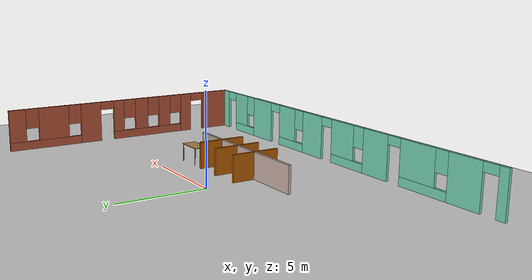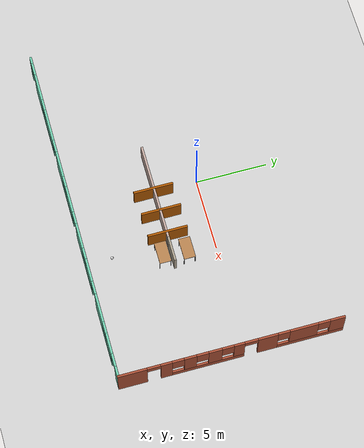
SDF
<sdf version="1.6">
 <world name="default">
  <model name="ground_plane">
   <static>1</static>
   <link name="link">
    <collision name="collision">
     <geometry><plane><normal>0 0 1</normal><size>100 100</size></plane></geometry>
     <surface>
      <contact><collide_bitmask>65535</collide_bitmask></contact>
      <friction><ode><mu>100</mu><mu2>50</mu2></ode></friction>
     </surface>
    </collision>
    <visual name="visual">
     <cast_shadows>0</cast_shadows>
     <geometry><plane><normal>0 0 1</normal><size>100 100</size></plane></geometry>
     <material>
      <script><uri>file://media/materials/scripts/gazebo.material</uri><name>Gazebo/Grey</name></script>
     </material>
    </visual>
   </link>
  </model>
  <model name="officespace">
   <pose>0.84701 -1.22405 0 0 -0 0</pose>
   <link name="Wall_53">
    <collision name="Wall_53_Collision">
     <geometry><box><size>7 0.15 1.5</size></box></geometry>
     <pose>0 0 0.75 0 -0 0</pose>
    </collision>
    <visual name="Wall_53_Visual">
     <pose>0 0 0.75 0 -0 0</pose>
     <geometry><box><size>7 0.15 1.5</size></box></geometry>
     <material>
      <script><uri>file://media/materials/scripts/gazebo.material</uri><name>Gazebo/Grey</name></script>
      <ambient>0.760784 0.662745 0.627451 1</ambient>
     </material>
     <meta><layer>0</layer></meta>
    </visual>
    <pose>-0.246524 -1.82856 0 0 -0 0</pose>
   </link>
   <link name="Wall_57">
    <collision name="Wall_57_Collision">
     <geometry><box><size>2.75 0.15 1.5</size></box></geometry>
     <pose>0 0 0.75 0 -0 0</pose>
    </collision>
    <visual name="Wall_57_Visual">
     <pose>0 0 0.75 0 -0 0</pose>
     <geometry><box><size>2.75 0.15 1.5</size></box></geometry>
     <material>
      <script><uri>file://media/materials/scripts/gazebo.material</uri><name>Gazebo/Grey</name></script>
      <ambient>0.666667 0.333333 0 1</ambient>
     </material>
     <meta><layer>0</layer></meta>
    </visual>
    <pose>-0.589525 -1.86356 0 0 0 -1.5708</pose>
   </link>
   <link name="Wall_60">
    <collision name="Wall_60_Collision">
     <geometry><box><size>2.75 0.15 1.5</size></box></geometry>
     <pose>0 0 0.75 0 -0 0</pose>
    </collision>
    <visual name="Wall_60_Visual">
     <pose>0 0 0.75 0 -0 0</pose>
     <geometry><box><size>2.75 0.15 1.5</size></box></geometry>
     <material>
      <script><uri>file://media/materials/scripts/gazebo.material</uri><name>Gazebo/Grey</name></script>
      <ambient>0.666667 0.333333 0 1</ambient>
     </material>
     <meta><layer>0</layer></meta>
    </visual>
    <pose>1.06648 -1.77156 0 0 0 -1.5708</pose>
   </link>
   <link name="Wall_62">
    <collision name="Wall_62_Collision">
     <geometry><box><size>1.75 0.15 1.5</size></box></geometry>
     <pose>0 0 0.75 0 -0 0</pose>
    </collision>
    <visual name="Wall_62_Visual">
     <pose>0 0 0.75 0 -0 0</pose>
     <geometry><box><size>1.75 0.15 1.5</size></box></geometry>
     <material>
      <script><uri>file://media/materials/scripts/gazebo.material</uri><name>Gazebo/Grey</name></script>
      <ambient>0.666667 0.623529 0.54902 1</ambient>
     </material>
     <meta><layer>0</layer></meta>
    </visual>
    <pose>3.97847 -1.82856 0 0 -0 0</pose>
   </link>
   <link name="Wall_64">
    <collision name="Wall_64_Collision">
     <geometry><box><size>2.75 0.15 1.5</size></box></geometry>
     <pose>0 0 0.75 0 -0 0</pose>
    </collision>
    <visual name="Wall_64_Visual">
     <pose>0 0 0.75 0 -0 0</pose>
     <geometry><box><size>2.75 0.15 1.5</size></box></geometry>
     <material>
      <script><uri>file://media/materials/scripts/gazebo.material</uri><name>Gazebo/Grey</name></script>
      <ambient>0.666667 0.333333 0 1</ambient>
     </material>
     <meta><layer>0</layer></meta>
    </visual>
    <pose>2.69948 -1.77156 0 0 0 -1.5708</pose>
   </link>
   <link name="Wall_8">
    <pose>0.019 -7.5555 0 0 -0 0</pose>
    <visual name="Wall_8_Visual_0">
     <pose>-11.739 0 1.25 0 -0 0</pose>
     <geometry><box><size>0.522 0.15 2.5</size></box></geometry>
     <material>
      <script><uri>file://media/materials/scripts/gazebo.material</uri><name>Gazebo/Grey</name></script>
      <ambient>0.435294 0.796078 0.67451 1</ambient>
     </material>
     <meta><layer>0</layer></meta>
    </visual>
    <collision name="Wall_8_Collision_0">
     <geometry><box><size>0.522 0.15 2.5</size></box></geometry>
     <pose>-11.739 0 1.25 0 -0 0</pose>
    </collision>
    <visual name="Wall_8_Visual_1">
     <pose>-9.577 0 1.25 0 -0 0</pose>
     <geometry><box><size>2.002 0.15 2.5</size></box></geometry>
     <material>
      <script><uri>file://media/materials/scripts/gazebo.material</uri><name>Gazebo/Grey</name></script>
      <ambient>0.435294 0.796078 0.67451 1</ambient>
     </material>
     <meta><layer>0</layer></meta>
    </visual>
    <collision name="Wall_8_Collision_1">
     <geometry><box><size>2.002 0.15 2.5</size></box></geometry>
     <pose>-9.577 0 1.25 0 -0 0</pose>
    </collision>
    <visual name="Wall_8_Visual_2">
     <pose>-3.5625 0 1.25 0 -0 0</pose>
     <geometry><box><size>1.887 0.15 2.5</size></box></geometry>
     <material>
      <script><uri>file://media/materials/scripts/gazebo.material</uri><name>Gazebo/Grey</name></script>
      <ambient>0.435294 0.796078 0.67451 1</ambient>
     </material>
     <meta><layer>0</layer></meta>
    </visual>
    <collision name="Wall_8_Collision_2">
     <geometry><box><size>1.887 0.15 2.5</size></box></geometry>
     <pose>-3.5625 0 1.25 0 -0 0</pose>
    </collision>
    <visual name="Wall_8_Visual_3">
     <pose>1.8655 0 1.25 0 -0 0</pose>
     <geometry><box><size>1.795 0.15 2.5</size></box></geometry>
     <material>
      <script><uri>file://media/materials/scripts/gazebo.material</uri><name>Gazebo/Grey</name></script>
      <ambient>0.435294 0.796078 0.67451 1</ambient>
     </material>
     <meta><layer>0</layer></meta>
    </visual>
    <collision name="Wall_8_Collision_3">
     <geometry><box><size>1.795 0.15 2.5</size></box></geometry>
     <pose>1.8655 0 1.25 0 -0 0</pose>
    </collision>
    <visual name="Wall_8_Visual_4">
     <pose>7.098 0 1.25 0 -0 0</pose>
     <geometry><box><size>2.002 0.15 2.5</size></box></geometry>
     <material>
      <script><uri>file://media/materials/scripts/gazebo.material</uri><name>Gazebo/Grey</name></script>
      <ambient>0.435294 0.796078 0.67451 1</ambient>
     </material>
     <meta><layer>0</layer></meta>
    </visual>
    <collision name="Wall_8_Collision_4">
     <geometry><box><size>2.002 0.15 2.5</size></box></geometry>
     <pose>7.098 0 1.25 0 -0 0</pose>
    </collision>
    <visual name="Wall_8_Visual_5">
     <pose>11.613 0 1.25 0 -0 0</pose>
     <geometry><box><size>0.774 0.15 2.5</size></box></geometry>
     <material>
      <script><uri>file://media/materials/scripts/gazebo.material</uri><name>Gazebo/Grey</name></script>
      <ambient>0.435294 0.796078 0.67451 1</ambient>
     </material>
     <meta><layer>0</layer></meta>
    </visual>
    <collision name="Wall_8_Collision_5">
     <geometry><box><size>0.774 0.15 2.5</size></box></geometry>
     <pose>11.613 0 1.25 0 -0 0</pose>
    </collision>
    <visual name="Wall_8_Visual_6">
     <pose>-6.991 0 0.25 0 -0 0</pose>
     <geometry><box><size>3.17 0.15 0.5</size></box></geometry>
     <material>
      <script><uri>file://media/materials/scripts/gazebo.material</uri><name>Gazebo/Grey</name></script>
      <ambient>0.435294 0.796078 0.67451 1</ambient>
     </material>
     <meta><layer>0</layer></meta>
    </visual>
    <collision name="Wall_8_Collision_6">
     <geometry><box><size>3.17 0.15 0.5</size></box></geometry>
     <pose>-6.991 0 0.25 0 -0 0</pose>
    </collision>
    <visual name="Wall_8_Visual_7">
     <pose>-1.2755 0 0.25 0 -0 0</pose>
     <geometry><box><size>2.687 0.15 0.5</size></box></geometry>
     <material>
      <script><uri>file://media/materials/scripts/gazebo.material</uri><name>Gazebo/Grey</name></script>
      <ambient>0.435294 0.796078 0.67451 1</ambient>
     </material>
     <meta><layer>0</layer></meta>
    </visual>
    <collision name="Wall_8_Collision_7">
     <geometry><box><size>2.687 0.15 0.5</size></box></geometry>
     <pose>-1.2755 0 0.25 0 -0 0</pose>
    </collision>
    <visual name="Wall_8_Visual_8">
     <pose>3.98 0 0.25 0 -0 0</pose>
     <geometry><box><size>2.434 0.15 0.5</size></box></geometry>
     <material>
      <script><uri>file://media/materials/scripts/gazebo.material</uri><name>Gazebo/Grey</name></script>
      <ambient>0.435294 0.796078 0.67451 1</ambient>
     </material>
     <meta><layer>0</layer></meta>
    </visual>
    <collision name="Wall_8_Collision_8">
     <geometry><box><size>2.434 0.15 0.5</size></box></geometry>
     <pose>3.98 0 0.25 0 -0 0</pose>
    </collision>
    <visual name="Wall_8_Visual_9">
     <pose>9.2125 0 0.25 0 -0 0</pose>
     <geometry><box><size>2.227 0.15 0.5</size></box></geometry>
     <material>
      <script><uri>file://media/materials/scripts/gazebo.material</uri><name>Gazebo/Grey</name></script>
      <ambient>0.435294 0.796078 0.67451 1</ambient>
     </material>
     <meta><layer>0</layer></meta>
    </visual>
    <collision name="Wall_8_Collision_9">
     <geometry><box><size>2.227 0.15 0.5</size></box></geometry>
     <pose>9.2125 0 0.25 0 -0 0</pose>
    </collision>
    <visual name="Wall_8_Visual_10">
     <pose>-6.591 0 1.5 0 -0 0</pose>
     <geometry><box><size>2.37 0.15 2</size></box></geometry>
     <material>
      <script><uri>file://media/materials/scripts/gazebo.material</uri><name>Gazebo/Grey</name></script>
      <ambient>0.435294 0.796078 0.67451 1</ambient>
     </material>
     <meta><layer>0</layer></meta>
    </visual>
    <collision name="Wall_8_Collision_10">
     <geometry><box><size>2.37 0.15 2</size></box></geometry>
     <pose>-6.591 0 1.5 0 -0 0</pose>
    </collision>
    <visual name="Wall_8_Visual_11">
     <pose>-6.591 0 1.5 0 -0 0</pose>
     <geometry><box><size>2.37 0.15 2</size></box></geometry>
     <material>
      <script><uri>file://media/materials/scripts/gazebo.material</uri><name>Gazebo/Grey</name></script>
      <ambient>0.435294 0.796078 0.67451 1</ambient>
     </material>
     <meta><layer>0</layer></meta>
    </visual>
    <collision name="Wall_8_Collision_11">
     <geometry><box><size>2.37 0.15 2</size></box></geometry>
     <pose>-6.591 0 1.5 0 -0 0</pose>
    </collision>
    <visual name="Wall_8_Visual_12">
     <pose>-0.8755 0 1.5 0 -0 0</pose>
     <geometry><box><size>1.887 0.15 2</size></box></geometry>
     <material>
      <script><uri>file://media/materials/scripts/gazebo.material</uri><name>Gazebo/Grey</name></script>
      <ambient>0.435294 0.796078 0.67451 1</ambient>
     </material>
     <meta><layer>0</layer></meta>
    </visual>
    <collision name="Wall_8_Collision_12">
     <geometry><box><size>1.887 0.15 2</size></box></geometry>
     <pose>-0.8755 0 1.5 0 -0 0</pose>
    </collision>
    <visual name="Wall_8_Visual_13">
     <pose>-0.8755 0 1.5 0 -0 0</pose>
     <geometry><box><size>1.887 0.15 2</size></box></geometry>
     <material>
      <script><uri>file://media/materials/scripts/gazebo.material</uri><name>Gazebo/Grey</name></script>
      <ambient>0.435294 0.796078 0.67451 1</ambient>
     </material>
     <meta><layer>0</layer></meta>
    </visual>
    <collision name="Wall_8_Collision_13">
     <geometry><box><size>1.887 0.15 2</size></box></geometry>
     <pose>-0.8755 0 1.5 0 -0 0</pose>
    </collision>
    <visual name="Wall_8_Visual_14">
     <pose>4.38 0 1.5 0 -0 0</pose>
     <geometry><box><size>1.634 0.15 2</size></box></geometry>
     <material>
      <script><uri>file://media/materials/scripts/gazebo.material</uri><name>Gazebo/Grey</name></script>
      <ambient>0.435294 0.796078 0.67451 1</ambient>
     </material>
     <meta><layer>0</layer></meta>
    </visual>
    <collision name="Wall_8_Collision_14">
     <geometry><box><size>1.634 0.15 2</size></box></geometry>
     <pose>4.38 0 1.5 0 -0 0</pose>
    </collision>
    <visual name="Wall_8_Visual_15">
     <pose>4.38 0 1.5 0 -0 0</pose>
     <geometry><box><size>1.634 0.15 2</size></box></geometry>
     <material>
      <script><uri>file://media/materials/scripts/gazebo.material</uri><name>Gazebo/Grey</name></script>
      <ambient>0.435294 0.796078 0.67451 1</ambient>
     </material>
     <meta><layer>0</layer></meta>
    </visual>
    <collision name="Wall_8_Collision_15">
     <geometry><box><size>1.634 0.15 2</size></box></geometry>
     <pose>4.38 0 1.5 0 -0 0</pose>
    </collision>
    <visual name="Wall_8_Visual_16">
     <pose>9.6125 0 1.5 0 -0 0</pose>
     <geometry><box><size>1.427 0.15 2</size></box></geometry>
     <material>
      <script><uri>file://media/materials/scripts/gazebo.material</uri><name>Gazebo/Grey</name></script>
      <ambient>0.435294 0.796078 0.67451 1</ambient>
     </material>
     <meta><layer>0</layer></meta>
    </visual>
    <collision name="Wall_8_Collision_16">
     <geometry><box><size>1.427 0.15 2</size></box></geometry>
     <pose>9.6125 0 1.5 0 -0 0</pose>
    </collision>
    <visual name="Wall_8_Visual_17">
     <pose>-8.176 0 1.9 0 -0 0</pose>
     <geometry><box><size>0.8 0.15 1.2</size></box></geometry>
     <material>
      <script><uri>file://media/materials/scripts/gazebo.material</uri><name>Gazebo/Grey</name></script>
      <ambient>0.435294 0.796078 0.67451 1</ambient>
     </material>
     <meta><layer>0</layer></meta>
    </visual>
    <collision name="Wall_8_Collision_17">
     <geometry><box><size>0.8 0.15 1.2</size></box></geometry>
     <pose>-8.176 0 1.9 0 -0 0</pose>
    </collision>
    <visual name="Wall_8_Visual_18">
     <pose>-2.219 0 1.9 0 -0 0</pose>
     <geometry><box><size>0.8 0.15 1.2</size></box></geometry>
     <material>
      <script><uri>file://media/materials/scripts/gazebo.material</uri><name>Gazebo/Grey</name></script>
      <ambient>0.435294 0.796078 0.67451 1</ambient>
     </material>
     <meta><layer>0</layer></meta>
    </visual>
    <collision name="Wall_8_Collision_18">
     <geometry><box><size>0.8 0.15 1.2</size></box></geometry>
     <pose>-2.219 0 1.9 0 -0 0</pose>
    </collision>
    <visual name="Wall_8_Visual_19">
     <pose>3.163 0 1.9 0 -0 0</pose>
     <geometry><box><size>0.8 0.15 1.2</size></box></geometry>
     <material>
      <script><uri>file://media/materials/scripts/gazebo.material</uri><name>Gazebo/Grey</name></script>
      <ambient>0.435294 0.796078 0.67451 1</ambient>
     </material>
     <meta><layer>0</layer></meta>
    </visual>
    <collision name="Wall_8_Collision_19">
     <geometry><box><size>0.8 0.15 1.2</size></box></geometry>
     <pose>3.163 0 1.9 0 -0 0</pose>
    </collision>
    <visual name="Wall_8_Visual_20">
     <pose>8.499 0 1.9 0 -0 0</pose>
     <geometry><box><size>0.8 0.15 1.2</size></box></geometry>
     <material>
      <script><uri>file://media/materials/scripts/gazebo.material</uri><name>Gazebo/Grey</name></script>
      <ambient>0.435294 0.796078 0.67451 1</ambient>
     </material>
     <meta><layer>0</layer></meta>
    </visual>
    <collision name="Wall_8_Collision_20">
     <geometry><box><size>0.8 0.15 1.2</size></box></geometry>
     <pose>8.499 0 1.9 0 -0 0</pose>
    </collision>
    <visual name="Wall_8_Visual_21">
     <pose>-11.028 0 2.25 0 -0 0</pose>
     <geometry><box><size>0.9 0.15 0.5</size></box></geometry>
     <material>
      <script><uri>file://media/materials/scripts/gazebo.material</uri><name>Gazebo/Grey</name></script>
      <ambient>0.435294 0.796078 0.67451 1</ambient>
     </material>
     <meta><layer>0</layer></meta>
    </visual>
    <collision name="Wall_8_Collision_21">
     <geometry><box><size>0.9 0.15 0.5</size></box></geometry>
     <pose>-11.028 0 2.25 0 -0 0</pose>
    </collision>
    <visual name="Wall_8_Visual_22">
     <pose>-4.956 0 2.25 0 -0 0</pose>
     <geometry><box><size>0.9 0.15 0.5</size></box></geometry>
     <material>
      <script><uri>file://media/materials/scripts/gazebo.material</uri><name>Gazebo/Grey</name></script>
      <ambient>0.435294 0.796078 0.67451 1</ambient>
     </material>
     <meta><layer>0</layer></meta>
    </visual>
    <collision name="Wall_8_Collision_22">
     <geometry><box><size>0.9 0.15 0.5</size></box></geometry>
     <pose>-4.956 0 2.25 0 -0 0</pose>
    </collision>
    <visual name="Wall_8_Visual_23">
     <pose>-4.956 0 2.25 0 -0 0</pose>
     <geometry><box><size>0.9 0.15 0.5</size></box></geometry>
     <material>
      <script><uri>file://media/materials/scripts/gazebo.material</uri><name>Gazebo/Grey</name></script>
      <ambient>0.435294 0.796078 0.67451 1</ambient>
     </material>
     <meta><layer>0</layer></meta>
    </visual>
    <collision name="Wall_8_Collision_23">
     <geometry><box><size>0.9 0.15 0.5</size></box></geometry>
     <pose>-4.956 0 2.25 0 -0 0</pose>
    </collision>
    <visual name="Wall_8_Visual_24">
     <pose>0.518 0 2.25 0 -0 0</pose>
     <geometry><box><size>0.9 0.15 0.5</size></box></geometry>
     <material>
      <script><uri>file://media/materials/scripts/gazebo.material</uri><name>Gazebo/Grey</name></script>
      <ambient>0.435294 0.796078 0.67451 1</ambient>
     </material>
     <meta><layer>0</layer></meta>
    </visual>
    <collision name="Wall_8_Collision_24">
     <geometry><box><size>0.9 0.15 0.5</size></box></geometry>
     <pose>0.518 0 2.25 0 -0 0</pose>
    </collision>
    <visual name="Wall_8_Visual_25">
     <pose>0.518 0 2.25 0 -0 0</pose>
     <geometry><box><size>0.9 0.15 0.5</size></box></geometry>
     <material>
      <script><uri>file://media/materials/scripts/gazebo.material</uri><name>Gazebo/Grey</name></script>
      <ambient>0.435294 0.796078 0.67451 1</ambient>
     </material>
     <meta><layer>0</layer></meta>
    </visual>
    <collision name="Wall_8_Collision_25">
     <geometry><box><size>0.9 0.15 0.5</size></box></geometry>
     <pose>0.518 0 2.25 0 -0 0</pose>
    </collision>
    <visual name="Wall_8_Visual_26">
     <pose>5.647 0 2.25 0 -0 0</pose>
     <geometry><box><size>0.9 0.15 0.5</size></box></geometry>
     <material>
      <script><uri>file://media/materials/scripts/gazebo.material</uri><name>Gazebo/Grey</name></script>
      <ambient>0.435294 0.796078 0.67451 1</ambient>
     </material>
     <meta><layer>0</layer></meta>
    </visual>
    <collision name="Wall_8_Collision_26">
     <geometry><box><size>0.9 0.15 0.5</size></box></geometry>
     <pose>5.647 0 2.25 0 -0 0</pose>
    </collision>
    <visual name="Wall_8_Visual_27">
     <pose>5.647 0 2.25 0 -0 0</pose>
     <geometry><box><size>0.9 0.15 0.5</size></box></geometry>
     <material>
      <script><uri>file://media/materials/scripts/gazebo.material</uri><name>Gazebo/Grey</name></script>
      <ambient>0.435294 0.796078 0.67451 1</ambient>
     </material>
     <meta><layer>0</layer></meta>
    </visual>
    <collision name="Wall_8_Collision_27">
     <geometry><box><size>0.9 0.15 0.5</size></box></geometry>
     <pose>5.647 0 2.25 0 -0 0</pose>
    </collision>
    <visual name="Wall_8_Visual_28">
     <pose>10.776 0 2.25 0 -0 0</pose>
     <geometry><box><size>0.9 0.15 0.5</size></box></geometry>
     <material>
      <script><uri>file://media/materials/scripts/gazebo.material</uri><name>Gazebo/Grey</name></script>
      <ambient>0.435294 0.796078 0.67451 1</ambient>
     </material>
     <meta><layer>0</layer></meta>
    </visual>
    <collision name="Wall_8_Collision_28">
     <geometry><box><size>0.9 0.15 0.5</size></box></geometry>
     <pose>10.776 0 2.25 0 -0 0</pose>
    </collision>
   </link>
   <link name="Wall_9">
    <pose>11.944 -0.005499 0 0 -0 1.5708</pose>
    <visual name="Wall_9_Visual_0">
     <pose>-6.6395 0 1.25 0 -0 0</pose>
     <geometry><box><size>1.971 0.15 2.5</size></box></geometry>
     <material>
      <script><uri>file://media/materials/scripts/gazebo.material</uri><name>Gazebo/Bricks</name></script>
      <ambient>0.435294 0.796078 0.67451 1</ambient>
     </material>
     <meta><layer>0</layer></meta>
    </visual>
    <collision name="Wall_9_Collision_0">
     <geometry><box><size>1.971 0.15 2.5</size></box></geometry>
     <pose>-6.6395 0 1.25 0 -0 0</pose>
    </collision>
    <visual name="Wall_9_Visual_1">
     <pose>-4.374 0 1.25 0 -0 0</pose>
     <geometry><box><size>0.76 0.15 2.5</size></box></geometry>
     <material>
      <script><uri>file://media/materials/scripts/gazebo.material</uri><name>Gazebo/Bricks</name></script>
      <ambient>0.435294 0.796078 0.67451 1</ambient>
     </material>
     <meta><layer>0</layer></meta>
    </visual>
    <collision name="Wall_9_Collision_1">
     <geometry><box><size>0.76 0.15 2.5</size></box></geometry>
     <pose>-4.374 0 1.25 0 -0 0</pose>
    </collision>
    <visual name="Wall_9_Visual_2">
     <pose>2.4225 0 1.25 0 -0 0</pose>
     <geometry><box><size>1.335 0.15 2.5</size></box></geometry>
     <material>
      <script><uri>file://media/materials/scripts/gazebo.material</uri><name>Gazebo/Bricks</name></script>
      <ambient>0.435294 0.796078 0.67451 1</ambient>
     </material>
     <meta><layer>0</layer></meta>
    </visual>
    <collision name="Wall_9_Collision_2">
     <geometry><box><size>1.335 0.15 2.5</size></box></geometry>
     <pose>2.4225 0 1.25 0 -0 0</pose>
    </collision>
    <visual name="Wall_9_Visual_3">
     <pose>-1.5695 0 0.25 0 -0 0</pose>
     <geometry><box><size>4.849 0.15 0.5</size></box></geometry>
     <material>
      <script><uri>file://media/materials/scripts/gazebo.material</uri><name>Gazebo/Bricks</name></script>
      <ambient>0.435294 0.796078 0.67451 1</ambient>
     </material>
     <meta><layer>0</layer></meta>
    </visual>
    <collision name="Wall_9_Collision_3">
     <geometry><box><size>4.849 0.15 0.5</size></box></geometry>
     <pose>-1.5695 0 0.25 0 -0 0</pose>
    </collision>
    <visual name="Wall_9_Visual_4">
     <pose>5.3575 0 0.25 0 -0 0</pose>
     <geometry><box><size>4.535 0.15 0.5</size></box></geometry>
     <material>
      <script><uri>file://media/materials/scripts/gazebo.material</uri><name>Gazebo/Bricks</name></script>
      <ambient>0.435294 0.796078 0.67451 1</ambient>
     </material>
     <meta><layer>0</layer></meta>
    </visual>
    <collision name="Wall_9_Collision_4">
     <geometry><box><size>4.535 0.15 0.5</size></box></geometry>
     <pose>5.3575 0 0.25 0 -0 0</pose>
    </collision>
    <visual name="Wall_9_Visual_5">
     <pose>-2.7775 0 1.5 0 -0 0</pose>
     <geometry><box><size>0.833 0.15 2</size></box></geometry>
     <material>
      <script><uri>file://media/materials/scripts/gazebo.material</uri><name>Gazebo/Bricks</name></script>
      <ambient>0.435294 0.796078 0.67451 1</ambient>
     </material>
     <meta><layer>0</layer></meta>
    </visual>
    <collision name="Wall_9_Collision_5">
     <geometry><box><size>0.833 0.15 2</size></box></geometry>
     <pose>-2.7775 0 1.5 0 -0 0</pose>
    </collision>
    <visual name="Wall_9_Visual_6">
     <pose>-1.11 0 1.5 0 -0 0</pose>
     <geometry><box><size>0.902 0.15 2</size></box></geometry>
     <material>
      <script><uri>file://media/materials/scripts/gazebo.material</uri><name>Gazebo/Bricks</name></script>
      <ambient>0.435294 0.796078 0.67451 1</ambient>
     </material>
     <meta><layer>0</layer></meta>
    </visual>
    <collision name="Wall_9_Collision_6">
     <geometry><box><size>0.902 0.15 2</size></box></geometry>
     <pose>-1.11 0 1.5 0 -0 0</pose>
    </collision>
    <visual name="Wall_9_Visual_7">
     <pose>0.498 0 1.5 0 -0 0</pose>
     <geometry><box><size>0.714 0.15 2</size></box></geometry>
     <material>
      <script><uri>file://media/materials/scripts/gazebo.material</uri><name>Gazebo/Bricks</name></script>
      <ambient>0.435294 0.796078 0.67451 1</ambient>
     </material>
     <meta><layer>0</layer></meta>
    </visual>
    <collision name="Wall_9_Collision_7">
     <geometry><box><size>0.714 0.15 2</size></box></geometry>
     <pose>0.498 0 1.5 0 -0 0</pose>
    </collision>
    <visual name="Wall_9_Visual_8">
     <pose>0.498 0 1.5 0 -0 0</pose>
     <geometry><box><size>0.714 0.15 2</size></box></geometry>
     <material>
      <script><uri>file://media/materials/scripts/gazebo.material</uri><name>Gazebo/Bricks</name></script>
      <ambient>0.435294 0.796078 0.67451 1</ambient>
     </material>
     <meta><layer>0</layer></meta>
    </visual>
    <collision name="Wall_9_Collision_8">
     <geometry><box><size>0.714 0.15 2</size></box></geometry>
     <pose>0.498 0 1.5 0 -0 0</pose>
    </collision>
    <visual name="Wall_9_Visual_9">
     <pose>4.847 0 1.5 0 -0 0</pose>
     <geometry><box><size>1.914 0.15 2</size></box></geometry>
     <material>
      <script><uri>file://media/materials/scripts/gazebo.material</uri><name>Gazebo/Bricks</name></script>
      <ambient>0.435294 0.796078 0.67451 1</ambient>
     </material>
     <meta><layer>0</layer></meta>
    </visual>
    <collision name="Wall_9_Collision_9">
     <geometry><box><size>1.914 0.15 2</size></box></geometry>
     <pose>4.847 0 1.5 0 -0 0</pose>
    </collision>
    <visual name="Wall_9_Visual_10">
     <pose>7.1145 0 1.5 0 -0 0</pose>
     <geometry><box><size>1.021 0.15 2</size></box></geometry>
     <material>
      <script><uri>file://media/materials/scripts/gazebo.material</uri><name>Gazebo/Bricks</name></script>
      <ambient>0.435294 0.796078 0.67451 1</ambient>
     </material>
     <meta><layer>0</layer></meta>
    </visual>
    <collision name="Wall_9_Collision_10">
     <geometry><box><size>1.021 0.15 2</size></box></geometry>
     <pose>7.1145 0 1.5 0 -0 0</pose>
    </collision>
    <visual name="Wall_9_Visual_11">
     <pose>-3.594 0 1.9 0 -0 0</pose>
     <geometry><box><size>0.8 0.15 1.2</size></box></geometry>
     <material>
      <script><uri>file://media/materials/scripts/gazebo.material</uri><name>Gazebo/Bricks</name></script>
      <ambient>0.435294 0.796078 0.67451 1</ambient>
     </material>
     <meta><layer>0</layer></meta>
    </visual>
    <collision name="Wall_9_Collision_11">
     <geometry><box><size>0.8 0.15 1.2</size></box></geometry>
     <pose>-3.594 0 1.9 0 -0 0</pose>
    </collision>
    <visual name="Wall_9_Visual_12">
     <pose>3.49 0 1.9 0 -0 0</pose>
     <geometry><box><size>0.8 0.15 1.2</size></box></geometry>
     <material>
      <script><uri>file://media/materials/scripts/gazebo.material</uri><name>Gazebo/Bricks</name></script>
      <ambient>0.435294 0.796078 0.67451 1</ambient>
     </material>
     <meta><layer>0</layer></meta>
    </visual>
    <collision name="Wall_9_Collision_12">
     <geometry><box><size>0.8 0.15 1.2</size></box></geometry>
     <pose>3.49 0 1.9 0 -0 0</pose>
    </collision>
    <visual name="Wall_9_Visual_13">
     <pose>-1.961 0 1.9 0 -0 0</pose>
     <geometry><box><size>0.8 0.15 1.2</size></box></geometry>
     <material>
      <script><uri>file://media/materials/scripts/gazebo.material</uri><name>Gazebo/Bricks</name></script>
      <ambient>0.435294 0.796078 0.67451 1</ambient>
     </material>
     <meta><layer>0</layer></meta>
    </visual>
    <collision name="Wall_9_Collision_13">
     <geometry><box><size>0.8 0.15 1.2</size></box></geometry>
     <pose>-1.961 0 1.9 0 -0 0</pose>
    </collision>
    <visual name="Wall_9_Visual_14">
     <pose>-0.259 0 1.9 0 -0 0</pose>
     <geometry><box><size>0.8 0.15 1.2</size></box></geometry>
     <material>
      <script><uri>file://media/materials/scripts/gazebo.material</uri><name>Gazebo/Bricks</name></script>
      <ambient>0.435294 0.796078 0.67451 1</ambient>
     </material>
     <meta><layer>0</layer></meta>
    </visual>
    <collision name="Wall_9_Collision_14">
     <geometry><box><size>0.8 0.15 1.2</size></box></geometry>
     <pose>-0.259 0 1.9 0 -0 0</pose>
    </collision>
    <visual name="Wall_9_Visual_15">
     <pose>6.204 0 1.9 0 -0 0</pose>
     <geometry><box><size>0.8 0.15 1.2</size></box></geometry>
     <material>
      <script><uri>file://media/materials/scripts/gazebo.material</uri><name>Gazebo/Bricks</name></script>
      <ambient>0.435294 0.796078 0.67451 1</ambient>
     </material>
     <meta><layer>0</layer></meta>
    </visual>
    <collision name="Wall_9_Collision_15">
     <geometry><box><size>0.8 0.15 1.2</size></box></geometry>
     <pose>6.204 0 1.9 0 -0 0</pose>
    </collision>
    <visual name="Wall_9_Visual_16">
     <pose>-5.204 0 2.25 0 -0 0</pose>
     <geometry><box><size>0.9 0.15 0.5</size></box></geometry>
     <material>
      <script><uri>file://media/materials/scripts/gazebo.material</uri><name>Gazebo/Bricks</name></script>
      <ambient>0.435294 0.796078 0.67451 1</ambient>
     </material>
     <meta><layer>0</layer></meta>
    </visual>
    <collision name="Wall_9_Collision_16">
     <geometry><box><size>0.9 0.15 0.5</size></box></geometry>
     <pose>-5.204 0 2.25 0 -0 0</pose>
    </collision>
    <visual name="Wall_9_Visual_17">
     <pose>1.305 0 2.25 0 -0 0</pose>
     <geometry><box><size>0.9 0.15 0.5</size></box></geometry>
     <material>
      <script><uri>file://media/materials/scripts/gazebo.material</uri><name>Gazebo/Bricks</name></script>
      <ambient>0.435294 0.796078 0.67451 1</ambient>
     </material>
     <meta><layer>0</layer></meta>
    </visual>
    <collision name="Wall_9_Collision_17">
     <geometry><box><size>0.9 0.15 0.5</size></box></geometry>
     <pose>1.305 0 2.25 0 -0 0</pose>
    </collision>
    <visual name="Wall_9_Visual_18">
     <pose>1.305 0 2.25 0 -0 0</pose>
     <geometry><box><size>0.9 0.15 0.5</size></box></geometry>
     <material>
      <script><uri>file://media/materials/scripts/gazebo.material</uri><name>Gazebo/Bricks</name></script>
      <ambient>0.435294 0.796078 0.67451 1</ambient>
     </material>
     <meta><layer>0</layer></meta>
    </visual>
    <collision name="Wall_9_Collision_18">
     <geometry><box><size>0.9 0.15 0.5</size></box></geometry>
     <pose>1.305 0 2.25 0 -0 0</pose>
    </collision>
   </link>
   <static>1</static>
  </model>
  <model name="table">
   <static>1</static>
   <link name="link">
    <collision name="surface">
     <pose>0 0 1 0 -0 0</pose>
     <geometry><box><size>1.5 0.8 0.03</size></box></geometry>
     <surface><friction><ode><mu>0.6</mu><mu2>0.6</mu2></ode></friction></surface>
    </collision>
    <visual name="visual1">
     <pose>0 0 1 0 -0 0</pose>
     <geometry><box><size>1.5 0.8 0.03</size></box></geometry>
     <material>
      <script><uri>file://media/materials/scripts/gazebo.material</uri><name>Gazebo/Wood</name></script>
     </material>
    </visual>
    <collision name="front_left_leg">
     <pose>0.68 0.38 0.5 0 -0 0</pose>
     <geometry><cylinder><radius>0.02</radius><length>1</length></cylinder></geometry>
    </collision>
    <visual name="front_left_leg">
     <pose>0.68 0.38 0.5 0 -0 0</pose>
     <geometry><cylinder><radius>0.02</radius><length>1</length></cylinder></geometry>
     <material>
      <script><uri>file://media/materials/scripts/gazebo.material</uri><name>Gazebo/Grey</name></script>
     </material>
    </visual>
    <collision name="front_right_leg">
     <pose>0.68 -0.38 0.5 0 -0 0</pose>
     <geometry><cylinder><radius>0.02</radius><length>1</length></cylinder></geometry>
    </collision>
    <visual name="front_right_leg">
     <pose>0.68 -0.38 0.5 0 -0 0</pose>
     <geometry><cylinder><radius>0.02</radius><length>1</length></cylinder></geometry>
     <material>
      <script><uri>file://media/materials/scripts/gazebo.material</uri><name>Gazebo/Grey</name></script>
     </material>
    </visual>
    <collision name="back_right_leg">
     <pose>-0.68 -0.38 0.5 0 -0 0</pose>
     <geometry><cylinder><radius>0.02</radius><length>1</length></cylinder></geometry>
    </collision>
    <visual name="back_right_leg">
     <pose>-0.68 -0.38 0.5 0 -0 0</pose>
     <geometry><cylinder><radius>0.02</radius><length>1</length></cylinder></geometry>
     <material>
      <script><uri>file://media/materials/scripts/gazebo.material</uri><name>Gazebo/Grey</name></script>
     </material>
    </visual>
    <collision name="back_left_leg">
     <pose>-0.68 0.38 0.5 0 -0 0</pose>
     <geometry><cylinder><radius>0.02</radius><length>1</length></cylinder></geometry>
    </collision>
    <visual name="back_left_leg">
     <pose>-0.68 0.38 0.5 0 -0 0</pose>
     <geometry><cylinder><radius>0.02</radius><length>1</length></cylinder></geometry>
     <material>
      <script><uri>file://media/materials/scripts/gazebo.material</uri><name>Gazebo/Grey</name></script>
     </material>
    </visual>
   </link>
   <pose>4.74434 -3.6606 0 0 -0 0</pose>
  </model>
  <model name="table_clone">
   <static>1</static>
   <link name="link">
    <collision name="surface">
     <pose>0 0 1 0 -0 0</pose>
     <geometry><box><size>1.5 0.8 0.03</size></box></geometry>
     <surface><friction><ode><mu>0.6</mu><mu2>0.6</mu2></ode></friction></surface>
    </collision>
    <visual name="visual1">
     <pose>0 0 1 0 -0 0</pose>
     <geometry><box><size>1.5 0.8 0.03</size></box></geometry>
     <material>
      <script><uri>file://media/materials/scripts/gazebo.material</uri><name>Gazebo/Wood</name></script>
     </material>
    </visual>
    <collision name="front_left_leg">
     <pose>0.68 0.38 0.5 0 -0 0</pose>
     <geometry><cylinder><radius>0.02</radius><length>1</length></cylinder></geometry>
    </collision>
    <visual name="front_left_leg">
     <pose>0.68 0.38 0.5 0 -0 0</pose>
     <geometry><cylinder><radius>0.02</radius><length>1</length></cylinder></geometry>
     <material>
      <script><uri>file://media/materials/scripts/gazebo.material</uri><name>Gazebo/Grey</name></script>
     </material>
    </visual>
    <collision name="front_right_leg">
     <pose>0.68 -0.38 0.5 0 -0 0</pose>
     <geometry><cylinder><radius>0.02</radius><length>1</length></cylinder></geometry>
    </collision>
    <visual name="front_right_leg">
     <pose>0.68 -0.38 0.5 0 -0 0</pose>
     <geometry><cylinder><radius>0.02</radius><length>1</length></cylinder></geometry>
     <material>
      <script><uri>file://media/materials/scripts/gazebo.material</uri><name>Gazebo/Grey</name></script>
     </material>
    </visual>
    <collision name="back_right_leg">
     <pose>-0.68 -0.38 0.5 0 -0 0</pose>
     <geometry><cylinder><radius>0.02</radius><length>1</length></cylinder></geometry>
    </collision>
    <visual name="back_right_leg">
     <pose>-0.68 -0.38 0.5 0 -0 0</pose>
     <geometry><cylinder><radius>0.02</radius><length>1</length></cylinder></geometry>
     <material>
      <script><uri>file://media/materials/scripts/gazebo.material</uri><name>Gazebo/Grey</name></script>
     </material>
    </visual>
    <collision name="back_left_leg">
     <pose>-0.68 0.38 0.5 0 -0 0</pose>
     <geometry><cylinder><radius>0.02</radius><length>1</length></cylinder></geometry>
    </collision>
    <visual name="back_left_leg">
     <pose>-0.68 0.38 0.5 0 -0 0</pose>
     <geometry><cylinder><radius>0.02</radius><length>1</length></cylinder></geometry>
     <material>
      <script><uri>file://media/materials/scripts/gazebo.material</uri><name>Gazebo/Grey</name></script>
     </material>
    </visual>
   </link>
   <pose>4.87695 -2.02233 0 0 -0 0</pose>
  </model>
  <model name="my_ball">
   <link name="link_5">
    <pose>0 0 0.1 0 -0 0</pose>
    <inertial>
     <mass>1</mass>
     <inertia><ixx>0.1</ixx><ixy>0</ixy><ixz>0</ixz><iyy>0.1</iyy><iyz>0</iyz><izz>0.1</izz></inertia>
    </inertial>
    <visual name="visual">
     <geometry><sphere><radius>0.1</radius></sphere></geometry>
     <material>
      <lighting>1</lighting>
      <script><uri>file://media/materials/scripts/gazebo.material</uri><name>Gazebo/White</name></script>
      <shader type="pixel"><normal_map>__default__</normal_map></shader>
      <ambient>1 1 1 1</ambient>
      <diffuse>1 1 1 1</diffuse>
      <specular>1 1 1 1</specular>
      <emissive>1 1 1 1</emissive>
     </material>
    </visual>
    <collision name="collision">
     <geometry><sphere><radius>0.1</radius></sphere></geometry>
     <surface>
      <friction>
       <ode><mu>1</mu><mu2>1</mu2><fdir1>0 0 0</fdir1><slip1>0</slip1><slip2>0</slip2></ode>
       <torsional>
        <coefficient>1</coefficient>
        <patch_radius>0</patch_radius>
        <surface_radius>0</surface_radius>
        <use_patch_radius>1</use_patch_radius>
        <ode><slip>0</slip></ode>
       </torsional>
      </friction>
      <bounce><restitution_coefficient>0</restitution_coefficient><threshold>1e+06</threshold></bounce>
      <contact>
       <collide_without_contact>0</collide_without_contact>
       <collide_without_contact_bitmask>1</collide_without_contact_bitmask>
       <collide_bitmask>1</collide_bitmask>
       <ode>
        <soft_cfm>0</soft_cfm>
        <soft_erp>0.2</soft_erp>
        <kp>1e+13</kp>
        <kd>1</kd>
        <max_vel>0.01</max_vel>
        <min_depth>0</min_depth>
       </ode>
       <bullet>
        <split_impulse>1</split_impulse>
        <split_impulse_penetration_threshold>-0.01</split_impulse_penetration_threshold>
        <soft_cfm>0</soft_cfm>
        <soft_erp>0.2</soft_erp>
        <kp>1e+13</kp>
        <kd>1</kd>
       </bullet>
      </contact>
     </surface>
    </collision>
   </link>
   <static>0</static>
   <pose>3.88171 -6.95056 0 0 -0 0</pose>
  </model>
 </world>
</sdf>
